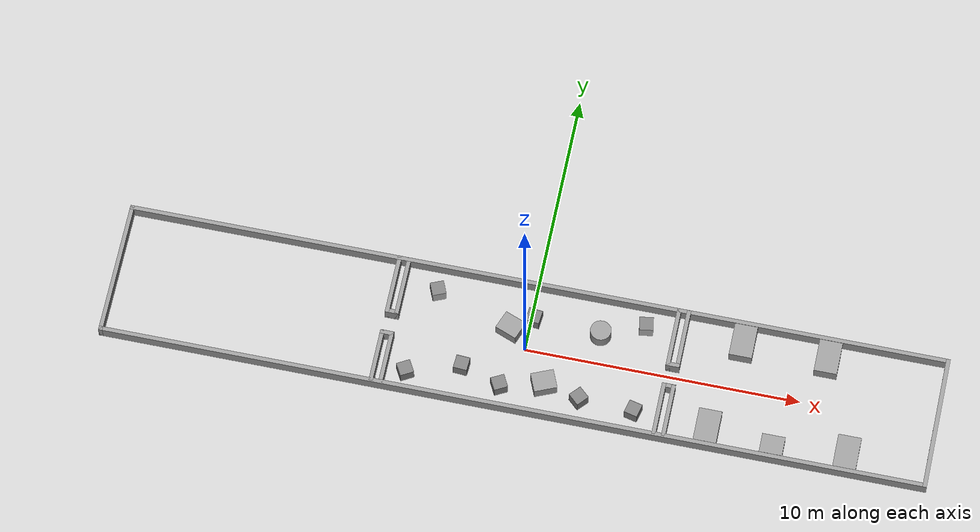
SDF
<sdf version="1.7">
 <world name="default">
  <light name="sun" type="directional">
   <pose>0 0 10 0 -0 0</pose>
   <diffuse>0.8 0.8 0.8 1</diffuse>
   <specular>0.2 0.2 0.2 1</specular>
   <attenuation>
    <range>1000</range>
    <constant>0.9</constant>
    <linear>0.01</linear>
    <quadratic>0.001</quadratic>
   </attenuation>
   <direction>-0.5 0.1 -0.9</direction>
   <spot><inner_angle>0</inner_angle><outer_angle>0</outer_angle><falloff>0</falloff></spot>
  </light>
  <model name="ground_plane">
   <static>1</static>
   <link name="link">
    <collision name="collision">
     <geometry><plane><normal>0 0 1</normal><size>100 100</size></plane></geometry>
     <surface><friction><ode><mu>100</mu><mu2>50</mu2></ode></friction></surface>
    </collision>
    <visual name="visual">
     <cast_shadows>0</cast_shadows>
     <geometry><plane><normal>0 0 1</normal><size>100 100</size></plane></geometry>
     <material>
      <script><uri>file://media/materials/scripts/gazebo.material</uri><name>Gazebo/Grey</name></script>
     </material>
    </visual>
   </link>
  </model>
  <gravity>0 0 -9.8</gravity>
  <magnetic_field>6e-06 2.3e-05 -4.2e-05</magnetic_field>
  <atmosphere type="adiabatic"/>
  <physics name="default_physics" default="0" type="ode">
   <max_step_size>0.001</max_step_size>
   <real_time_factor>1</real_time_factor>
   <real_time_update_rate>1000</real_time_update_rate>
  </physics>
  <scene><ambient>0.4 0.4 0.4 1</ambient><background>0.7 0.7 0.7 1</background><shadows>1</shadows></scene>
  <audio><device>default</device></audio>
  <spherical_coordinates>
   <surface_model>EARTH_WGS84</surface_model>
   <latitude_deg>0</latitude_deg>
   <longitude_deg>0</longitude_deg>
   <elevation>0</elevation>
   <heading_deg>0</heading_deg>
  </spherical_coordinates>
  <model name="exp_empty_rooms">
   <pose>-0.0311 0.006065 0 0 -0 0</pose>
   <link name="Wall_0">
    <collision name="Wall_0_Collision">
     <geometry><box><size>5 0.15 0.5</size></box></geometry>
     <pose>0 0 0.25 0 -0 0</pose>
    </collision>
    <visual name="Wall_0_Visual">
     <pose>0 0 0.25 0 -0 0</pose>
     <geometry><box><size>5 0.15 0.5</size></box></geometry>
     <material>
      <script><uri>file://media/materials/scripts/gazebo.material</uri><name>Gazebo/Grey</name></script>
      <ambient>1 1 1 1</ambient>
     </material>
     <meta><layer>0</layer></meta>
    </visual>
    <pose>-14.925 0 0 0 -0 -1.5708</pose>
   </link>
   <link name="Wall_1">
    <collision name="Wall_1_Collision">
     <geometry><box><size>30 0.15 0.5</size></box></geometry>
     <pose>0 0 0.25 0 -0 0</pose>
    </collision>
    <visual name="Wall_1_Visual">
     <pose>0 0 0.25 0 -0 0</pose>
     <geometry><box><size>30 0.15 0.5</size></box></geometry>
     <material>
      <script><uri>file://media/materials/scripts/gazebo.material</uri><name>Gazebo/Grey</name></script>
      <ambient>1 1 1 1</ambient>
     </material>
     <meta><layer>0</layer></meta>
    </visual>
    <pose>0 -2.425 0 0 -0 0</pose>
   </link>
   <link name="Wall_10">
    <collision name="Wall_10_Collision">
     <geometry><box><size>2.25 0.15 0.5</size></box></geometry>
     <pose>0 0 0.25 0 -0 0</pose>
    </collision>
    <visual name="Wall_10_Visual">
     <pose>0 0 0.25 0 -0 0</pose>
     <geometry><box><size>2.25 0.15 0.5</size></box></geometry>
     <material>
      <script><uri>file://media/materials/scripts/gazebo.material</uri><name>Gazebo/Grey</name></script>
      <ambient>1 1 1 1</ambient>
     </material>
     <meta><layer>0</layer></meta>
    </visual>
    <pose>-5.055 1.375 0 0 -0 -1.5708</pose>
   </link>
   <link name="Wall_11">
    <collision name="Wall_11_Collision">
     <geometry><box><size>0.5 0.15 0.5</size></box></geometry>
     <pose>0 0 0.25 0 -0 0</pose>
    </collision>
    <visual name="Wall_11_Visual">
     <pose>0 0 0.25 0 -0 0</pose>
     <geometry><box><size>0.5 0.15 0.5</size></box></geometry>
     <material>
      <script><uri>file://media/materials/scripts/gazebo.material</uri><name>Gazebo/Grey</name></script>
      <ambient>1 1 1 1</ambient>
     </material>
     <meta><layer>0</layer></meta>
    </visual>
    <pose>-4.88 0.325 0 0 -0 0</pose>
   </link>
   <link name="Wall_12">
    <collision name="Wall_12_Collision">
     <geometry><box><size>2.25 0.15 0.5</size></box></geometry>
     <pose>0 0 0.25 0 -0 0</pose>
    </collision>
    <visual name="Wall_12_Visual">
     <pose>0 0 0.25 0 -0 0</pose>
     <geometry><box><size>2.25 0.15 0.5</size></box></geometry>
     <material>
      <script><uri>file://media/materials/scripts/gazebo.material</uri><name>Gazebo/Grey</name></script>
      <ambient>1 1 1 1</ambient>
     </material>
     <meta><layer>0</layer></meta>
    </visual>
    <pose>-4.705 1.375 0 0 -0 1.5708</pose>
   </link>
   <link name="Wall_16">
    <collision name="Wall_16_Collision">
     <geometry><box><size>0.5 0.15 0.5</size></box></geometry>
     <pose>0 0 0.25 0 -0 0</pose>
    </collision>
    <visual name="Wall_16_Visual">
     <pose>0 0 0.25 0 -0 0</pose>
     <geometry><box><size>0.5 0.15 0.5</size></box></geometry>
     <material>
      <script><uri>file://media/materials/scripts/gazebo.material</uri><name>Gazebo/Grey</name></script>
      <ambient>1 1 1 1</ambient>
     </material>
     <meta><layer>0</layer></meta>
    </visual>
    <pose>-4.88 -0.525 0 0 -0 0</pose>
   </link>
   <link name="Wall_17">
    <collision name="Wall_17_Collision">
     <geometry><box><size>2 0.15 0.5</size></box></geometry>
     <pose>0 0 0.25 0 -0 0</pose>
    </collision>
    <visual name="Wall_17_Visual">
     <pose>0 0 0.25 0 -0 0</pose>
     <geometry><box><size>2 0.15 0.5</size></box></geometry>
     <material>
      <script><uri>file://media/materials/scripts/gazebo.material</uri><name>Gazebo/Grey</name></script>
      <ambient>1 1 1 1</ambient>
     </material>
     <meta><layer>0</layer></meta>
    </visual>
    <pose>-4.705 -1.45 0 0 -0 -1.5708</pose>
   </link>
   <link name="Wall_19">
    <collision name="Wall_19_Collision">
     <geometry><box><size>2 0.15 0.5</size></box></geometry>
     <pose>0 0 0.25 0 -0 0</pose>
    </collision>
    <visual name="Wall_19_Visual">
     <pose>0 0 0.25 0 -0 0</pose>
     <geometry><box><size>2 0.15 0.5</size></box></geometry>
     <material>
      <script><uri>file://media/materials/scripts/gazebo.material</uri><name>Gazebo/Grey</name></script>
      <ambient>1 1 1 1</ambient>
     </material>
     <meta><layer>0</layer></meta>
    </visual>
    <pose>-5.055 -1.45 0 0 -0 -1.5708</pose>
   </link>
   <link name="Wall_2">
    <collision name="Wall_2_Collision">
     <geometry><box><size>5 0.15 0.5</size></box></geometry>
     <pose>0 0 0.25 0 -0 0</pose>
    </collision>
    <visual name="Wall_2_Visual">
     <pose>0 0 0.25 0 -0 0</pose>
     <geometry><box><size>5 0.15 0.5</size></box></geometry>
     <material>
      <script><uri>file://media/materials/scripts/gazebo.material</uri><name>Gazebo/Grey</name></script>
      <ambient>1 1 1 1</ambient>
     </material>
     <meta><layer>0</layer></meta>
    </visual>
    <pose>14.925 0 0 0 -0 1.5708</pose>
   </link>
   <link name="Wall_3">
    <collision name="Wall_3_Collision">
     <geometry><box><size>30 0.15 0.5</size></box></geometry>
     <pose>0 0 0.25 0 -0 0</pose>
    </collision>
    <visual name="Wall_3_Visual">
     <pose>0 0 0.25 0 -0 0</pose>
     <geometry><box><size>30 0.15 0.5</size></box></geometry>
     <material>
      <script><uri>file://media/materials/scripts/gazebo.material</uri><name>Gazebo/Grey</name></script>
      <ambient>1 1 1 1</ambient>
     </material>
     <meta><layer>0</layer></meta>
    </visual>
    <pose>0 2.425 0 0 -0 3.14159</pose>
   </link>
   <link name="Wall_38">
    <collision name="Wall_38_Collision">
     <geometry><box><size>2 0.15 0.5</size></box></geometry>
     <pose>0 0 0.25 0 -0 0</pose>
    </collision>
    <visual name="Wall_38_Visual">
     <pose>0 0 0.25 0 -0 0</pose>
     <geometry><box><size>2 0.15 0.5</size></box></geometry>
     <material>
      <script><uri>file://media/materials/scripts/gazebo.material</uri><name>Gazebo/Grey</name></script>
      <ambient>1 1 1 1</ambient>
     </material>
     <meta><layer>0</layer></meta>
    </visual>
    <pose>5.185 -1.44 0 0 -0 -1.5708</pose>
   </link>
   <link name="Wall_43">
    <collision name="Wall_43_Collision">
     <geometry><box><size>0.5 0.15 0.5</size></box></geometry>
     <pose>0 0 0.25 0 -0 0</pose>
    </collision>
    <visual name="Wall_43_Visual">
     <pose>0 0 0.25 0 -0 0</pose>
     <geometry><box><size>0.5 0.15 0.5</size></box></geometry>
     <material>
      <script><uri>file://media/materials/scripts/gazebo.material</uri><name>Gazebo/Grey</name></script>
      <ambient>1 1 1 1</ambient>
     </material>
     <meta><layer>0</layer></meta>
    </visual>
    <pose>5.36 -0.515 0 0 -0 0</pose>
   </link>
   <link name="Wall_44">
    <collision name="Wall_44_Collision">
     <geometry><box><size>2 0.15 0.5</size></box></geometry>
     <pose>0 0 0.25 0 -0 0</pose>
    </collision>
    <visual name="Wall_44_Visual">
     <pose>0 0 0.25 0 -0 0</pose>
     <geometry><box><size>2 0.15 0.5</size></box></geometry>
     <material>
      <script><uri>file://media/materials/scripts/gazebo.material</uri><name>Gazebo/Grey</name></script>
      <ambient>1 1 1 1</ambient>
     </material>
     <meta><layer>0</layer></meta>
    </visual>
    <pose>5.535 -1.44 0 0 -0 -1.5708</pose>
   </link>
   <link name="Wall_47">
    <collision name="Wall_47_Collision">
     <geometry><box><size>2.25 0.15 0.5</size></box></geometry>
     <pose>0 0 0.25 0 -0 0</pose>
    </collision>
    <visual name="Wall_47_Visual">
     <pose>0 0 0.25 0 -0 0</pose>
     <geometry><box><size>2.25 0.15 0.5</size></box></geometry>
     <material>
      <script><uri>file://media/materials/scripts/gazebo.material</uri><name>Gazebo/Grey</name></script>
      <ambient>1 1 1 1</ambient>
     </material>
     <meta><layer>0</layer></meta>
    </visual>
    <pose>5.175 1.365 0 0 -0 1.5708</pose>
   </link>
   <link name="Wall_49">
    <collision name="Wall_49_Collision">
     <geometry><box><size>0.5 0.15 0.5</size></box></geometry>
     <pose>0 0 0.25 0 -0 0</pose>
    </collision>
    <visual name="Wall_49_Visual">
     <pose>0 0 0.25 0 -0 0</pose>
     <geometry><box><size>0.5 0.15 0.5</size></box></geometry>
     <material>
      <script><uri>file://media/materials/scripts/gazebo.material</uri><name>Gazebo/Grey</name></script>
      <ambient>1 1 1 1</ambient>
     </material>
     <meta><layer>0</layer></meta>
    </visual>
    <pose>5.35 0.315 0 0 -0 0</pose>
   </link>
   <link name="Wall_51">
    <collision name="Wall_51_Collision">
     <geometry><box><size>2.25 0.15 0.5</size></box></geometry>
     <pose>0 0 0.25 0 -0 0</pose>
    </collision>
    <visual name="Wall_51_Visual">
     <pose>0 0 0.25 0 -0 0</pose>
     <geometry><box><size>2.25 0.15 0.5</size></box></geometry>
     <material>
      <script><uri>file://media/materials/scripts/gazebo.material</uri><name>Gazebo/Grey</name></script>
      <ambient>1 1 1 1</ambient>
     </material>
     <meta><layer>0</layer></meta>
    </visual>
    <pose>5.525 1.365 0 0 -0 1.5708</pose>
   </link>
   <static>1</static>
  </model>
  <model name="unit_box_clone">
   <pose>-0.643254 0.665318 0.243065 0 0 -0.368363</pose>
   <link name="link">
    <inertial>
     <mass>1</mass>
     <inertia>
      <ixx>0.166667</ixx>
      <ixy>0</ixy>
      <ixz>0</ixz>
      <iyy>0.166667</iyy>
      <iyz>0</iyz>
      <izz>0.166667</izz>
     </inertia>
    </inertial>
    <collision name="collision">
     <geometry><box><size>0.832545 0.712184 0.486131</size></box></geometry>
    </collision>
    <visual name="visual">
     <geometry><box><size>0.832545 0.712184 0.486131</size></box></geometry>
     <material>
      <script><name>Gazebo/Grey</name><uri>file://media/materials/scripts/gazebo.material</uri></script>
     </material>
    </visual>
   </link>
  </model>
  <model name="unit_box_clone_clone">
   <pose>0.944854 -1.20691 0.243065 0 -0 0.400938</pose>
   <link name="link">
    <inertial>
     <mass>1</mass>
     <inertia>
      <ixx>0.166667</ixx>
      <ixy>0</ixy>
      <ixz>0</ixz>
      <iyy>0.166667</iyy>
      <iyz>0</iyz>
      <izz>0.166667</izz>
     </inertia>
    </inertial>
    <collision name="collision">
     <geometry><box><size>0.832545 0.712184 0.486131</size></box></geometry>
    </collision>
    <visual name="visual">
     <geometry><box><size>0.832545 0.712184 0.486131</size></box></geometry>
     <material>
      <script><name>Gazebo/Grey</name><uri>file://media/materials/scripts/gazebo.material</uri></script>
     </material>
    </visual>
   </link>
  </model>
  <model name="unit_box_clone_clone_2_clone">
   <pose>9.34147 -1.9802 0.243065 0 0 -3e-06</pose>
   <link name="link">
    <inertial>
     <mass>1</mass>
     <inertia>
      <ixx>0.166667</ixx>
      <ixy>0</ixy>
      <ixz>0</ixz>
      <iyy>0.166667</iyy>
      <iyz>0</iyz>
      <izz>0.166667</izz>
     </inertia>
    </inertial>
    <collision name="collision"><geometry><box><size>0.832545 0.71218 0.486131</size></box></geometry></collision>
    <visual name="visual">
     <geometry><box><size>0.832545 0.71218 0.486131</size></box></geometry>
     <material>
      <script><name>Gazebo/Grey</name><uri>file://media/materials/scripts/gazebo.material</uri></script>
     </material>
    </visual>
   </link>
  </model>
  <model name="unit_box_clone_clone_2_clone_clone">
   <pose>6.96963 -1.72255 0.243065 0 0 -3e-06</pose>
   <link name="link">
    <inertial>
     <mass>1</mass>
     <inertia>
      <ixx>0.166667</ixx>
      <ixy>0</ixy>
      <ixz>0</ixz>
      <iyy>0.166667</iyy>
      <iyz>0</iyz>
      <izz>0.166667</izz>
     </inertia>
    </inertial>
    <collision name="collision"><geometry><box><size>0.832545 1.22961 0.486131</size></box></geometry></collision>
    <visual name="visual">
     <geometry><box><size>0.832545 1.22961 0.486131</size></box></geometry>
     <material>
      <script><name>Gazebo/Grey</name><uri>file://media/materials/scripts/gazebo.material</uri></script>
     </material>
    </visual>
   </link>
  </model>
  <model name="unit_box_clone_clone_2_clone_clone_clone">
   <pose>10.6858 1.74123 0.243065 0 0 -3e-06</pose>
   <link name="link">
    <inertial>
     <mass>1</mass>
     <inertia>
      <ixx>0.166667</ixx>
      <ixy>0</ixy>
      <ixz>0</ixz>
      <iyy>0.166667</iyy>
      <iyz>0</iyz>
      <izz>0.166667</izz>
     </inertia>
    </inertial>
    <collision name="collision"><geometry><box><size>0.832545 1.22961 0.486131</size></box></geometry></collision>
    <visual name="visual">
     <geometry><box><size>0.832545 1.22961 0.486131</size></box></geometry>
     <material>
      <script><name>Gazebo/Grey</name><uri>file://media/materials/scripts/gazebo.material</uri></script>
     </material>
    </visual>
   </link>
  </model>
  <model name="unit_box_clone_clone_2_clone_clone_clone_0">
   <pose>11.9853 -1.72376 0.243065 0 0 -3e-06</pose>
   <link name="link">
    <inertial>
     <mass>1</mass>
     <inertia>
      <ixx>0.166667</ixx>
      <ixy>0</ixy>
      <ixz>0</ixz>
      <iyy>0.166667</iyy>
      <iyz>0</iyz>
      <izz>0.166667</izz>
     </inertia>
    </inertial>
    <collision name="collision"><geometry><box><size>0.832545 1.22961 0.486131</size></box></geometry></collision>
    <visual name="visual">
     <geometry><box><size>0.832545 1.22961 0.486131</size></box></geometry>
     <material>
      <script><name>Gazebo/Grey</name><uri>file://media/materials/scripts/gazebo.material</uri></script>
     </material>
    </visual>
   </link>
  </model>
  <model name="unit_box_clone_clone_2_clone_clone_clone_1">
   <pose>7.60902 1.74123 0.243065 0 0 -3e-06</pose>
   <link name="link">
    <inertial>
     <mass>1</mass>
     <inertia>
      <ixx>0.166667</ixx>
      <ixy>0</ixy>
      <ixz>0</ixz>
      <iyy>0.166667</iyy>
      <iyz>0</iyz>
      <izz>0.166667</izz>
     </inertia>
    </inertial>
    <collision name="collision"><geometry><box><size>0.832545 1.22961 0.486131</size></box></geometry></collision>
    <visual name="visual">
     <geometry><box><size>0.832545 1.22961 0.486131</size></box></geometry>
     <material>
      <script><name>Gazebo/Grey</name><uri>file://media/materials/scripts/gazebo.material</uri></script>
     </material>
    </visual>
   </link>
  </model>
  <model name="unit_cylinder">
   <pose>2.55137 1.08869 0.26442 -3e-06 -3e-06 0</pose>
   <link name="link">
    <inertial>
     <mass>1</mass>
     <inertia><ixx>0.145833</ixx><ixy>0</ixy><ixz>0</ixz><iyy>0.145833</iyy><iyz>0</iyz><izz>0.125</izz></inertia>
    </inertial>
    <collision name="collision">
     <geometry><cylinder><radius>0.378871</radius><length>0.528855</length></cylinder></geometry>
    </collision>
    <visual name="visual">
     <geometry><cylinder><radius>0.378871</radius><length>0.528855</length></cylinder></geometry>
     <material>
      <script><name>Gazebo/Grey</name><uri>file://media/materials/scripts/gazebo.material</uri></script>
     </material>
    </visual>
   </link>
  </model>
  <model name="apple_model">
   <static>1</static>
   <link name="link">
    <pose>0 0 0.25 0 -0 0</pose>
    <visual name="apple_face">
     <geometry><box><size>0.01 0.5 0.5</size></box></geometry>
     <pose>0.25 0 0 0 -0 0</pose>
     <material>
      <script>
       <uri>model://apple_model/materials/scripts</uri>
       <uri>model://apple_model/materials/textures</uri>
       <name>face/AppleImage</name>
      </script>
     </material>
    </visual>
    <collision name="apple_face_collision">
     <geometry><box><size>0.01 0.5 0.5</size></box></geometry>
     <pose>0.25 0 0 0 -0 0</pose>
    </collision>
    <visual name="other_faces">
     <geometry><box><size>0.5 0.5 0.5</size></box></geometry>
     <material>
      <ambient>0.5 0.5 0.5 1</ambient>
      <diffuse>0.5 0.5 0.5 1</diffuse>
      <specular>0.2 0.2 0.2 1</specular>
     </material>
    </visual>
   </link>
   <pose>-3.48296 1.54309 0 0 0 -1.16961</pose>
  </model>
  <model name="apple_model_0">
   <static>1</static>
   <link name="link">
    <pose>0 0 0.25 0 -0 0</pose>
    <visual name="apple_face">
     <geometry><box><size>0.01 0.5 0.5</size></box></geometry>
     <pose>0.25 0 0 0 -0 0</pose>
     <material>
      <script>
       <uri>model://apple_model/materials/scripts</uri>
       <uri>model://apple_model/materials/textures</uri>
       <name>face/AppleImage</name>
      </script>
     </material>
    </visual>
    <collision name="apple_face_collision">
     <geometry><box><size>0.01 0.5 0.5</size></box></geometry>
     <pose>0.25 0 0 0 -0 0</pose>
    </collision>
    <visual name="other_faces">
     <geometry><box><size>0.5 0.5 0.5</size></box></geometry>
     <material>
      <ambient>0.5 0.5 0.5 1</ambient>
      <diffuse>0.5 0.5 0.5 1</diffuse>
      <specular>0.2 0.2 0.2 1</specular>
     </material>
    </visual>
   </link>
   <pose>2.27987 -1.54219 0 0 -0 2.40292</pose>
  </model>
  <model name="chair_model">
   <static>1</static>
   <link name="link">
    <pose>0 0 0.25 0 -0 0</pose>
    <visual name="chair_face">
     <geometry><box><size>0.01 0.5 0.5</size></box></geometry>
     <pose>0.25 0 0 0 -0 0</pose>
     <material>
      <script>
       <uri>model://chair_model/materials/scripts</uri>
       <uri>model://chair_model/materials/textures</uri>
       <name>face/ChairImage</name>
      </script>
     </material>
    </visual>
    <collision name="chair_face_collision">
     <geometry><box><size>0.01 0.5 0.5</size></box></geometry>
     <pose>0.25 0 0 0 -0 0</pose>
    </collision>
    <visual name="other_faces">
     <geometry><box><size>0.5 0.5 0.5</size></box></geometry>
     <material>
      <ambient>0.5 0.5 0.5 1</ambient>
      <diffuse>0.5 0.5 0.5 1</diffuse>
      <specular>0.2 0.2 0.2 1</specular>
     </material>
    </visual>
   </link>
   <pose>-3.99248 -1.72327 0 0 -0 0.515996</pose>
  </model>
  <model name="cat_model">
   <static>1</static>
   <link name="link">
    <pose>0 0 0.25 0 -0 0</pose>
    <visual name="cat_face">
     <geometry><box><size>0.01 0.5 0.5</size></box></geometry>
     <pose>0.25 0 0 0 -0 0</pose>
     <material>
      <script>
       <uri>model://cat_model/materials/scripts</uri>
       <uri>model://cat_model/materials/textures</uri>
       <name>face/CatImage</name>
      </script>
     </material>
    </visual>
    <collision name="cat_face_collision">
     <geometry><box><size>0.01 0.5 0.5</size></box></geometry>
     <pose>0.25 0 0 0 -0 0</pose>
    </collision>
    <visual name="other_faces">
     <geometry><box><size>0.5 0.5 0.5</size></box></geometry>
     <material>
      <ambient>0.5 0.5 0.5 1</ambient>
      <diffuse>0.5 0.5 0.5 1</diffuse>
      <specular>0.2 0.2 0.2 1</specular>
     </material>
    </visual>
   </link>
   <pose>-0.598521 -1.59948 0 0 -0 0.486641</pose>
  </model>
  <model name="car_model">
   <static>1</static>
   <link name="link">
    <pose>0 0 0.25 0 -0 0</pose>
    <visual name="car_face">
     <geometry><box><size>0.01 0.5 0.5</size></box></geometry>
     <pose>0.25 0 0 0 -0 0</pose>
     <material>
      <script>
       <uri>model://car_model/materials/scripts</uri>
       <uri>model://car_model/materials/textures</uri>
       <name>face/CarImage</name>
      </script>
     </material>
    </visual>
    <collision name="car_face_collision">
     <geometry><box><size>0.01 0.5 0.5</size></box></geometry>
     <pose>0.25 0 0 0 -0 0</pose>
    </collision>
    <visual name="other_faces">
     <geometry><box><size>0.5 0.5 0.5</size></box></geometry>
     <material>
      <ambient>0.5 0.5 0.5 1</ambient>
      <diffuse>0.5 0.5 0.5 1</diffuse>
      <specular>0.2 0.2 0.2 1</specular>
     </material>
    </visual>
   </link>
   <pose>-2.05679 -1.12602 0 0 -0 1.50342</pose>
  </model>
  <model name="car_model_0">
   <static>1</static>
   <link name="link">
    <pose>0 0 0.25 0 -0 0</pose>
    <visual name="car_face">
     <geometry><box><size>0.01 0.5 0.5</size></box></geometry>
     <pose>0.25 0 0 0 -0 0</pose>
     <material>
      <script>
       <uri>model://car_model/materials/scripts</uri>
       <uri>model://car_model/materials/textures</uri>
       <name>face/CarImage</name>
      </script>
     </material>
    </visual>
    <collision name="car_face_collision">
     <geometry><box><size>0.01 0.5 0.5</size></box></geometry>
     <pose>0.25 0 0 0 -0 0</pose>
    </collision>
    <visual name="other_faces">
     <geometry><box><size>0.5 0.5 0.5</size></box></geometry>
     <material>
      <ambient>0.5 0.5 0.5 1</ambient>
      <diffuse>0.5 0.5 0.5 1</diffuse>
      <specular>0.2 0.2 0.2 1</specular>
     </material>
    </visual>
   </link>
   <pose>4.26593 -1.62351 0 0 -0 1.33573</pose>
  </model>
  <model name="cat_model_0">
   <static>1</static>
   <link name="link">
    <pose>0 0 0.25 0 -0 0</pose>
    <visual name="cat_face">
     <geometry><box><size>0.01 0.5 0.5</size></box></geometry>
     <pose>0.25 0 0 0 -0 0</pose>
     <material>
      <script>
       <uri>model://cat_model/materials/scripts</uri>
       <uri>model://cat_model/materials/textures</uri>
       <name>face/CatImage</name>
      </script>
     </material>
    </visual>
    <collision name="cat_face_collision">
     <geometry><box><size>0.01 0.5 0.5</size></box></geometry>
     <pose>0.25 0 0 0 -0 0</pose>
    </collision>
    <visual name="other_faces">
     <geometry><box><size>0.5 0.5 0.5</size></box></geometry>
     <material>
      <ambient>0.5 0.5 0.5 1</ambient>
      <diffuse>0.5 0.5 0.5 1</diffuse>
      <specular>0.2 0.2 0.2 1</specular>
     </material>
    </visual>
   </link>
   <pose>0.101195 1.18327 0 0 -0 1.46528</pose>
  </model>
  <model name="cat_model_1">
   <static>1</static>
   <link name="link">
    <pose>0 0 0.25 0 -0 0</pose>
    <visual name="cat_face">
     <geometry><box><size>0.01 0.5 0.5</size></box></geometry>
     <pose>0.25 0 0 0 -0 0</pose>
     <material>
      <script>
       <uri>model://cat_model/materials/scripts</uri>
       <uri>model://cat_model/materials/textures</uri>
       <name>face/CatImage</name>
      </script>
     </material>
    </visual>
    <collision name="cat_face_collision">
     <geometry><box><size>0.01 0.5 0.5</size></box></geometry>
     <pose>0.25 0 0 0 -0 0</pose>
    </collision>
    <visual name="other_faces">
     <geometry><box><size>0.5 0.5 0.5</size></box></geometry>
     <material>
      <ambient>0.5 0.5 0.5 1</ambient>
      <diffuse>0.5 0.5 0.5 1</diffuse>
      <specular>0.2 0.2 0.2 1</specular>
     </material>
    </visual>
   </link>
   <pose>4.09278 1.68894 0 0 0 -1.41371</pose>
  </model>
 </world>
</sdf>
